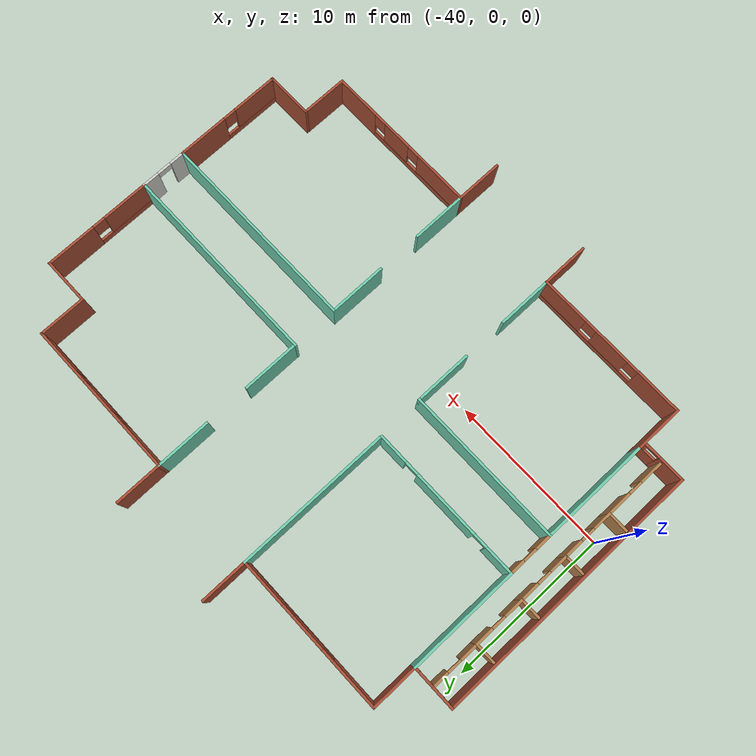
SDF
<sdf version="1.6">
 <model name="mybuilding4">
  <pose>-24.5775 3.32779 0 0 -0 0</pose>
  <link name="Wall_10">
   <collision name="Wall_10_Collision">
    <geometry><box><size>7 0.15 2.5</size></box></geometry>
    <pose>0 0 1.25 0 -0 0</pose>
   </collision>
   <visual name="Wall_10_Visual">
    <pose>0 0 1.25 0 -0 0</pose>
    <geometry><box><size>7 0.15 2.5</size></box></geometry>
    <material>
     <script><uri>file://media/materials/scripts/gazebo.material</uri><name>Gazebo/Grey</name></script>
     <ambient>0.435294 0.796078 0.67451 1</ambient>
    </material>
    <meta><layer>0</layer></meta>
   </visual>
   <pose>-13.3194 4.85 0 0 0 -1.5708</pose>
  </link>
  <link name="Wall_12">
   <pose>-8.44435 1.425 0 0 -0 0</pose>
   <visual name="Wall_12_Visual_0">
    <pose>-4.00047 0 1.25 0 -0 0</pose>
    <geometry><box><size>1.89905 0.15 2.5</size></box></geometry>
    <material>
     <script><uri>file://media/materials/scripts/gazebo.material</uri><name>Gazebo/Grey</name></script>
     <ambient>0.435294 0.796078 0.67451 1</ambient>
    </material>
    <meta><layer>0</layer></meta>
   </visual>
   <collision name="Wall_12_Collision_0">
    <geometry><box><size>1.89905 0.15 2.5</size></box></geometry>
    <pose>-4.00047 0 1.25 0 -0 0</pose>
   </collision>
   <visual name="Wall_12_Visual_1">
    <pose>-0.016774 0 1.25 0 -0 0</pose>
    <geometry><box><size>4.26834 0.15 2.5</size></box></geometry>
    <material>
     <script><uri>file://media/materials/scripts/gazebo.material</uri><name>Gazebo/Grey</name></script>
     <ambient>0.435294 0.796078 0.67451 1</ambient>
    </material>
    <meta><layer>0</layer></meta>
   </visual>
   <collision name="Wall_12_Collision_1">
    <geometry><box><size>4.26834 0.15 2.5</size></box></geometry>
    <pose>-0.016774 0 1.25 0 -0 0</pose>
   </collision>
   <visual name="Wall_12_Visual_2">
    <pose>3.9837 0 1.25 0 -0 0</pose>
    <geometry><box><size>1.9326 0.15 2.5</size></box></geometry>
    <material>
     <script><uri>file://media/materials/scripts/gazebo.material</uri><name>Gazebo/Grey</name></script>
     <ambient>0.435294 0.796078 0.67451 1</ambient>
    </material>
    <meta><layer>0</layer></meta>
   </visual>
   <collision name="Wall_12_Collision_2">
    <geometry><box><size>1.9326 0.15 2.5</size></box></geometry>
    <pose>3.9837 0 1.25 0 -0 0</pose>
   </collision>
   <visual name="Wall_12_Visual_3">
    <pose>-2.60094 0 2.25 0 -0 0</pose>
    <geometry><box><size>0.9 0.15 0.5</size></box></geometry>
    <material>
     <script><uri>file://media/materials/scripts/gazebo.material</uri><name>Gazebo/Grey</name></script>
     <ambient>0.435294 0.796078 0.67451 1</ambient>
    </material>
    <meta><layer>0</layer></meta>
   </visual>
   <collision name="Wall_12_Collision_3">
    <geometry><box><size>0.9 0.15 0.5</size></box></geometry>
    <pose>-2.60094 0 2.25 0 -0 0</pose>
   </collision>
   <visual name="Wall_12_Visual_4">
    <pose>2.5674 0 2.25 0 -0 0</pose>
    <geometry><box><size>0.9 0.15 0.5</size></box></geometry>
    <material>
     <script><uri>file://media/materials/scripts/gazebo.material</uri><name>Gazebo/Grey</name></script>
     <ambient>0.435294 0.796078 0.67451 1</ambient>
    </material>
    <meta><layer>0</layer></meta>
   </visual>
   <collision name="Wall_12_Collision_4">
    <geometry><box><size>0.9 0.15 0.5</size></box></geometry>
    <pose>2.5674 0 2.25 0 -0 0</pose>
   </collision>
  </link>
  <link name="Wall_14">
   <pose>-14.6695 6.72521 0 0 0 -1.5708</pose>
   <visual name="Wall_14_Visual_0">
    <pose>-1.05613 0 1.1 0 -0 0</pose>
    <geometry><box><size>1.13773 0.15 2.2</size></box></geometry>
    <material>
     <script><uri>file://media/materials/scripts/gazebo.material</uri><name>Gazebo/Wood</name></script>
     <ambient>1 1 1 1</ambient>
    </material>
    <meta><layer>0</layer></meta>
   </visual>
   <collision name="Wall_14_Collision_0">
    <geometry><box><size>1.13773 0.15 2.2</size></box></geometry>
    <pose>-1.05613 0 1.1 0 -0 0</pose>
   </collision>
   <visual name="Wall_14_Visual_1">
    <pose>1.01887 0 1.1 0 -0 0</pose>
    <geometry><box><size>1.21227 0.15 2.2</size></box></geometry>
    <material>
     <script><uri>file://media/materials/scripts/gazebo.material</uri><name>Gazebo/Wood</name></script>
     <ambient>1 1 1 1</ambient>
    </material>
    <meta><layer>0</layer></meta>
   </visual>
   <collision name="Wall_14_Collision_1">
    <geometry><box><size>1.21227 0.15 2.2</size></box></geometry>
    <pose>1.01887 0 1.1 0 -0 0</pose>
   </collision>
   <visual name="Wall_14_Visual_2">
    <pose>-0.037267 0 2.1 0 -0 0</pose>
    <geometry><box><size>0.9 0.15 0.2</size></box></geometry>
    <material>
     <script><uri>file://media/materials/scripts/gazebo.material</uri><name>Gazebo/Wood</name></script>
     <ambient>1 1 1 1</ambient>
    </material>
    <meta><layer>0</layer></meta>
   </visual>
   <collision name="Wall_14_Collision_2">
    <geometry><box><size>0.9 0.15 0.2</size></box></geometry>
    <pose>-0.037267 0 2.1 0 -0 0</pose>
   </collision>
  </link>
  <link name="Wall_16">
   <collision name="Wall_16_Collision">
    <geometry><box><size>1.5 0.15 2.5</size></box></geometry>
    <pose>0 0 1.25 0 -0 0</pose>
   </collision>
   <visual name="Wall_16_Visual">
    <pose>0 0 1.25 0 -0 0</pose>
    <geometry><box><size>1.5 0.15 2.5</size></box></geometry>
    <material>
     <script><uri>file://media/materials/scripts/gazebo.material</uri><name>Gazebo/Bricks</name></script>
     <ambient>1 1 1 1</ambient>
    </material>
    <meta><layer>0</layer></meta>
   </visual>
   <pose>-15.3444 8.27511 0 0 0 -3.14143</pose>
  </link>
  <link name="Wall_18">
   <collision name="Wall_18_Collision">
    <geometry><box><size>17 0.15 2.5</size></box></geometry>
    <pose>0 0 1.25 0 -0 0</pose>
   </collision>
   <visual name="Wall_18_Visual">
    <pose>0 0 1.25 0 -0 0</pose>
    <geometry><box><size>17 0.15 2.5</size></box></geometry>
    <material>
     <script><uri>file://media/materials/scripts/gazebo.material</uri><name>Gazebo/Bricks</name></script>
     <ambient>1 1 1 1</ambient>
    </material>
    <meta><layer>0</layer></meta>
   </visual>
   <pose>-16.0193 -0.15 0 0 0 -1.5708</pose>
  </link>
  <link name="Wall_2">
   <pose>-8.42511 11.125 0 0 -0 0</pose>
   <visual name="Wall_2_Visual_0">
    <pose>-3.41019 0 1.25 0 -0 0</pose>
    <geometry><box><size>3.11808 0.15 2.5</size></box></geometry>
    <material>
     <script><uri>file://media/materials/scripts/gazebo.material</uri><name>Gazebo/Bricks</name></script>
     <ambient>1 1 1 1</ambient>
    </material>
    <meta><layer>0</layer></meta>
   </visual>
   <collision name="Wall_2_Collision_0">
    <geometry><box><size>3.11808 0.15 2.5</size></box></geometry>
    <pose>-3.41019 0 1.25 0 -0 0</pose>
   </collision>
   <visual name="Wall_2_Visual_1">
    <pose>1.55904 0 0.25 0 -0 0</pose>
    <geometry><box><size>6.82039 0.15 0.5</size></box></geometry>
    <material>
     <script><uri>file://media/materials/scripts/gazebo.material</uri><name>Gazebo/Bricks</name></script>
     <ambient>1 1 1 1</ambient>
    </material>
    <meta><layer>0</layer></meta>
   </visual>
   <collision name="Wall_2_Collision_1">
    <geometry><box><size>6.82039 0.15 0.5</size></box></geometry>
    <pose>1.55904 0 0.25 0 -0 0</pose>
   </collision>
   <visual name="Wall_2_Visual_2">
    <pose>0.056279 0 1.5 0 -0 0</pose>
    <geometry><box><size>2.21486 0.15 2</size></box></geometry>
    <material>
     <script><uri>file://media/materials/scripts/gazebo.material</uri><name>Gazebo/Bricks</name></script>
     <ambient>1 1 1 1</ambient>
    </material>
    <meta><layer>0</layer></meta>
   </visual>
   <collision name="Wall_2_Collision_2">
    <geometry><box><size>2.21486 0.15 2</size></box></geometry>
    <pose>0.056279 0 1.5 0 -0 0</pose>
   </collision>
   <visual name="Wall_2_Visual_3">
    <pose>3.46647 0 1.5 0 -0 0</pose>
    <geometry><box><size>3.00553 0.15 2</size></box></geometry>
    <material>
     <script><uri>file://media/materials/scripts/gazebo.material</uri><name>Gazebo/Bricks</name></script>
     <ambient>1 1 1 1</ambient>
    </material>
    <meta><layer>0</layer></meta>
   </visual>
   <collision name="Wall_2_Collision_3">
    <geometry><box><size>3.00553 0.15 2</size></box></geometry>
    <pose>3.46647 0 1.5 0 -0 0</pose>
   </collision>
   <visual name="Wall_2_Visual_4">
    <pose>-1.45115 0 1.9 0 -0 0</pose>
    <geometry><box><size>0.8 0.15 1.2</size></box></geometry>
    <material>
     <script><uri>file://media/materials/scripts/gazebo.material</uri><name>Gazebo/Bricks</name></script>
     <ambient>1 1 1 1</ambient>
    </material>
    <meta><layer>0</layer></meta>
   </visual>
   <collision name="Wall_2_Collision_4">
    <geometry><box><size>0.8 0.15 1.2</size></box></geometry>
    <pose>-1.45115 0 1.9 0 -0 0</pose>
   </collision>
   <visual name="Wall_2_Visual_5">
    <pose>1.56371 0 1.9 0 -0 0</pose>
    <geometry><box><size>0.8 0.15 1.2</size></box></geometry>
    <material>
     <script><uri>file://media/materials/scripts/gazebo.material</uri><name>Gazebo/Bricks</name></script>
     <ambient>1 1 1 1</ambient>
    </material>
    <meta><layer>0</layer></meta>
   </visual>
   <collision name="Wall_2_Collision_5">
    <geometry><box><size>0.8 0.15 1.2</size></box></geometry>
    <pose>1.56371 0 1.9 0 -0 0</pose>
   </collision>
  </link>
  <link name="Wall_20">
   <pose>-13.3194 0 0 0 0 -1.5708</pose>
   <visual name="Wall_20_Visual_0">
    <pose>-0.991559 0 1.25 0 -0 0</pose>
    <geometry><box><size>1.01688 0.15 2.5</size></box></geometry>
    <material>
     <script><uri>file://media/materials/scripts/gazebo.material</uri><name>Gazebo/Wood</name></script>
     <ambient>1 1 1 1</ambient>
    </material>
    <meta><layer>0</layer></meta>
   </visual>
   <collision name="Wall_20_Collision_0">
    <geometry><box><size>1.01688 0.15 2.5</size></box></geometry>
    <pose>-0.991559 0 1.25 0 -0 0</pose>
   </collision>
   <visual name="Wall_20_Visual_1">
    <pose>0.958441 0 1.25 0 -0 0</pose>
    <geometry><box><size>1.08312 0.15 2.5</size></box></geometry>
    <material>
     <script><uri>file://media/materials/scripts/gazebo.material</uri><name>Gazebo/Wood</name></script>
     <ambient>1 1 1 1</ambient>
    </material>
    <meta><layer>0</layer></meta>
   </visual>
   <collision name="Wall_20_Collision_1">
    <geometry><box><size>1.08312 0.15 2.5</size></box></geometry>
    <pose>0.958441 0 1.25 0 -0 0</pose>
   </collision>
   <visual name="Wall_20_Visual_2">
    <pose>-0.033118 0 2.25 0 -0 0</pose>
    <geometry><box><size>0.9 0.15 0.5</size></box></geometry>
    <material>
     <script><uri>file://media/materials/scripts/gazebo.material</uri><name>Gazebo/Wood</name></script>
     <ambient>1 1 1 1</ambient>
    </material>
    <meta><layer>0</layer></meta>
   </visual>
   <collision name="Wall_20_Collision_2">
    <geometry><box><size>0.9 0.15 0.5</size></box></geometry>
    <pose>-0.033118 0 2.25 0 -0 0</pose>
   </collision>
  </link>
  <link name="Wall_22">
   <collision name="Wall_22_Collision">
    <geometry><box><size>7 0.15 2.5</size></box></geometry>
    <pose>0 0 1.25 0 -0 0</pose>
   </collision>
   <visual name="Wall_22_Visual">
    <pose>0 0 1.25 0 -0 0</pose>
    <geometry><box><size>7 0.15 2.5</size></box></geometry>
    <material>
     <script><uri>file://media/materials/scripts/gazebo.material</uri><name>Gazebo/Grey</name></script>
     <ambient>0.435294 0.796078 0.67451 1</ambient>
    </material>
    <meta><layer>0</layer></meta>
   </visual>
   <pose>-13.3194 -4.85 0 0 0 -1.5708</pose>
  </link>
  <link name="Wall_24">
   <collision name="Wall_24_Collision">
    <geometry><box><size>3 0.15 2.5</size></box></geometry>
    <pose>0 0 1.25 0 -0 0</pose>
   </collision>
   <visual name="Wall_24_Visual">
    <pose>0 0 1.25 0 -0 0</pose>
    <geometry><box><size>3 0.15 2.5</size></box></geometry>
    <material>
     <script><uri>file://media/materials/scripts/gazebo.material</uri><name>Gazebo/Bricks</name></script>
     <ambient>1 1 1 1</ambient>
    </material>
    <meta><layer>0</layer></meta>
   </visual>
   <pose>-13.3194 -9.7 0 0 0 -1.5708</pose>
  </link>
  <link name="Wall_26">
   <collision name="Wall_26_Collision">
    <geometry><box><size>10 0.15 2.5</size></box></geometry>
    <pose>0 0 1.25 0 -0 0</pose>
   </collision>
   <visual name="Wall_26_Visual">
    <pose>0 0 1.25 0 -0 0</pose>
    <geometry><box><size>10 0.15 2.5</size></box></geometry>
    <material>
     <script><uri>file://media/materials/scripts/gazebo.material</uri><name>Gazebo/Grey</name></script>
     <ambient>0.435294 0.796078 0.67451 1</ambient>
    </material>
    <meta><layer>0</layer></meta>
   </visual>
   <pose>-8.39435 -1.425 0 0 -0 0</pose>
  </link>
  <link name="Wall_28">
   <pose>-8.39435 -11.125 0 0 -0 0</pose>
   <visual name="Wall_28_Visual_0">
    <pose>-3.53325 0 1.25 0 -0 0</pose>
    <geometry><box><size>2.9335 0.15 2.5</size></box></geometry>
    <material>
     <script><uri>file://media/materials/scripts/gazebo.material</uri><name>Gazebo/Bricks</name></script>
     <ambient>1 1 1 1</ambient>
    </material>
    <meta><layer>0</layer></meta>
   </visual>
   <collision name="Wall_28_Collision_0">
    <geometry><box><size>2.9335 0.15 2.5</size></box></geometry>
    <pose>-3.53325 0 1.25 0 -0 0</pose>
   </collision>
   <visual name="Wall_28_Visual_1">
    <pose>1.46675 0 0.25 0 -0 0</pose>
    <geometry><box><size>7.0665 0.15 0.5</size></box></geometry>
    <material>
     <script><uri>file://media/materials/scripts/gazebo.material</uri><name>Gazebo/Bricks</name></script>
     <ambient>1 1 1 1</ambient>
    </material>
    <meta><layer>0</layer></meta>
   </visual>
   <collision name="Wall_28_Collision_1">
    <geometry><box><size>7.0665 0.15 0.5</size></box></geometry>
    <pose>1.46675 0 0.25 0 -0 0</pose>
   </collision>
   <visual name="Wall_28_Visual_2">
    <pose>-0.097543 0 1.5 0 -0 0</pose>
    <geometry><box><size>2.33792 0.15 2</size></box></geometry>
    <material>
     <script><uri>file://media/materials/scripts/gazebo.material</uri><name>Gazebo/Bricks</name></script>
     <ambient>1 1 1 1</ambient>
    </material>
    <meta><layer>0</layer></meta>
   </visual>
   <collision name="Wall_28_Collision_2">
    <geometry><box><size>2.33792 0.15 2</size></box></geometry>
    <pose>-0.097543 0 1.5 0 -0 0</pose>
   </collision>
   <visual name="Wall_28_Visual_3">
    <pose>3.43571 0 1.5 0 -0 0</pose>
    <geometry><box><size>3.12858 0.15 2</size></box></geometry>
    <material>
     <script><uri>file://media/materials/scripts/gazebo.material</uri><name>Gazebo/Bricks</name></script>
     <ambient>1 1 1 1</ambient>
    </material>
    <meta><layer>0</layer></meta>
   </visual>
   <collision name="Wall_28_Collision_3">
    <geometry><box><size>3.12858 0.15 2</size></box></geometry>
    <pose>3.43571 0 1.5 0 -0 0</pose>
   </collision>
   <visual name="Wall_28_Visual_4">
    <pose>-1.6665 0 1.9 0 -0 0</pose>
    <geometry><box><size>0.8 0.15 1.2</size></box></geometry>
    <material>
     <script><uri>file://media/materials/scripts/gazebo.material</uri><name>Gazebo/Bricks</name></script>
     <ambient>1 1 1 1</ambient>
    </material>
    <meta><layer>0</layer></meta>
   </visual>
   <collision name="Wall_28_Collision_4">
    <geometry><box><size>0.8 0.15 1.2</size></box></geometry>
    <pose>-1.6665 0 1.9 0 -0 0</pose>
   </collision>
   <visual name="Wall_28_Visual_5">
    <pose>1.47142 0 1.9 0 -0 0</pose>
    <geometry><box><size>0.8 0.15 1.2</size></box></geometry>
    <material>
     <script><uri>file://media/materials/scripts/gazebo.material</uri><name>Gazebo/Bricks</name></script>
     <ambient>1 1 1 1</ambient>
    </material>
    <meta><layer>0</layer></meta>
   </visual>
   <collision name="Wall_28_Collision_5">
    <geometry><box><size>0.8 0.15 1.2</size></box></geometry>
    <pose>1.47142 0 1.9 0 -0 0</pose>
   </collision>
  </link>
  <link name="Wall_30">
   <collision name="Wall_30_Collision">
    <geometry><box><size>3.5 0.15 2.5</size></box></geometry>
    <pose>0 0 1.25 0 -0 0</pose>
   </collision>
   <visual name="Wall_30_Visual">
    <pose>0 0 1.25 0 -0 0</pose>
    <geometry><box><size>3.5 0.15 2.5</size></box></geometry>
    <material>
     <script><uri>file://media/materials/scripts/gazebo.material</uri><name>Gazebo/Grey</name></script>
     <ambient>0.435294 0.796078 0.67451 1</ambient>
    </material>
    <meta><layer>0</layer></meta>
   </visual>
   <pose>-3.46935 -9.45 0 0 -0 1.5708</pose>
  </link>
  <link name="Wall_32">
   <collision name="Wall_32_Collision">
    <geometry><box><size>1.5 0.15 2.2</size></box></geometry>
    <pose>0 0 1.1 0 -0 0</pose>
   </collision>
   <visual name="Wall_32_Visual">
    <pose>0 0 1.1 0 -0 0</pose>
    <geometry><box><size>1.5 0.15 2.2</size></box></geometry>
    <material>
     <script><uri>file://media/materials/scripts/gazebo.material</uri><name>Gazebo/Wood</name></script>
     <ambient>1 1 1 1</ambient>
    </material>
    <meta><layer>0</layer></meta>
   </visual>
   <pose>-15.3445 5.17521 0 0 -0 3.14159</pose>
  </link>
  <link name="Wall_34">
   <pose>-14.6695 3.55021 0 0 0 -1.5708</pose>
   <visual name="Wall_34_Visual_0">
    <pose>-1.09385 0 1.1 0 -0 0</pose>
    <geometry><box><size>1.2123 0.15 2.2</size></box></geometry>
    <material>
     <script><uri>file://media/materials/scripts/gazebo.material</uri><name>Gazebo/Wood</name></script>
     <ambient>1 1 1 1</ambient>
    </material>
    <meta><layer>0</layer></meta>
   </visual>
   <collision name="Wall_34_Collision_0">
    <geometry><box><size>1.2123 0.15 2.2</size></box></geometry>
    <pose>-1.09385 0 1.1 0 -0 0</pose>
   </collision>
   <visual name="Wall_34_Visual_1">
    <pose>1.05615 0 1.1 0 -0 0</pose>
    <geometry><box><size>1.2877 0.15 2.2</size></box></geometry>
    <material>
     <script><uri>file://media/materials/scripts/gazebo.material</uri><name>Gazebo/Wood</name></script>
     <ambient>1 1 1 1</ambient>
    </material>
    <meta><layer>0</layer></meta>
   </visual>
   <collision name="Wall_34_Collision_1">
    <geometry><box><size>1.2877 0.15 2.2</size></box></geometry>
    <pose>1.05615 0 1.1 0 -0 0</pose>
   </collision>
   <visual name="Wall_34_Visual_2">
    <pose>-0.037695 0 2.1 0 -0 0</pose>
    <geometry><box><size>0.9 0.15 0.2</size></box></geometry>
    <material>
     <script><uri>file://media/materials/scripts/gazebo.material</uri><name>Gazebo/Wood</name></script>
     <ambient>1 1 1 1</ambient>
    </material>
    <meta><layer>0</layer></meta>
   </visual>
   <collision name="Wall_34_Collision_2">
    <geometry><box><size>0.9 0.15 0.2</size></box></geometry>
    <pose>-0.037695 0 2.1 0 -0 0</pose>
   </collision>
  </link>
  <link name="Wall_36">
   <collision name="Wall_36_Collision">
    <geometry><box><size>1.5 0.15 2.2</size></box></geometry>
    <pose>0 0 1.1 0 -0 0</pose>
   </collision>
   <visual name="Wall_36_Visual">
    <pose>0 0 1.1 0 -0 0</pose>
    <geometry><box><size>1.5 0.15 2.2</size></box></geometry>
    <material>
     <script><uri>file://media/materials/scripts/gazebo.material</uri><name>Gazebo/Wood</name></script>
     <ambient>1 1 1 1</ambient>
    </material>
    <meta><layer>0</layer></meta>
   </visual>
   <pose>-15.3445 1.92521 0 0 -0 3.14159</pose>
  </link>
  <link name="Wall_38">
   <pose>-14.6695 0.300213 0 0 0 -1.5708</pose>
   <visual name="Wall_38_Visual_0">
    <pose>-1.05792 0 1.1 0 -0 0</pose>
    <geometry><box><size>1.28416 0.15 2.2</size></box></geometry>
    <material>
     <script><uri>file://media/materials/scripts/gazebo.material</uri><name>Gazebo/Wood</name></script>
     <ambient>1 1 1 1</ambient>
    </material>
    <meta><layer>0</layer></meta>
   </visual>
   <collision name="Wall_38_Collision_0">
    <geometry><box><size>1.28416 0.15 2.2</size></box></geometry>
    <pose>-1.05792 0 1.1 0 -0 0</pose>
   </collision>
   <visual name="Wall_38_Visual_1">
    <pose>1.09208 0 1.1 0 -0 0</pose>
    <geometry><box><size>1.21584 0.15 2.2</size></box></geometry>
    <material>
     <script><uri>file://media/materials/scripts/gazebo.material</uri><name>Gazebo/Wood</name></script>
     <ambient>1 1 1 1</ambient>
    </material>
    <meta><layer>0</layer></meta>
   </visual>
   <collision name="Wall_38_Collision_1">
    <geometry><box><size>1.21584 0.15 2.2</size></box></geometry>
    <pose>1.09208 0 1.1 0 -0 0</pose>
   </collision>
   <visual name="Wall_38_Visual_2">
    <pose>0.03416 0 2.1 0 -0 0</pose>
    <geometry><box><size>0.9 0.15 0.2</size></box></geometry>
    <material>
     <script><uri>file://media/materials/scripts/gazebo.material</uri><name>Gazebo/Wood</name></script>
     <ambient>1 1 1 1</ambient>
    </material>
    <meta><layer>0</layer></meta>
   </visual>
   <collision name="Wall_38_Collision_2">
    <geometry><box><size>0.9 0.15 0.2</size></box></geometry>
    <pose>0.03416 0 2.1 0 -0 0</pose>
   </collision>
  </link>
  <link name="Wall_4">
   <collision name="Wall_4_Collision">
    <geometry><box><size>3 0.15 2.5</size></box></geometry>
    <pose>0 0 1.25 0 -0 0</pose>
   </collision>
   <visual name="Wall_4_Visual">
    <pose>0 0 1.25 0 -0 0</pose>
    <geometry><box><size>3 0.15 2.5</size></box></geometry>
    <material>
     <script><uri>file://media/materials/scripts/gazebo.material</uri><name>Gazebo/Bricks</name></script>
     <ambient>1 1 1 1</ambient>
    </material>
    <meta><layer>0</layer></meta>
   </visual>
   <pose>-13.3194 9.7 0 0 0 -1.5708</pose>
  </link>
  <link name="Wall_40">
   <collision name="Wall_40_Collision">
    <geometry><box><size>1.5 0.15 2.2</size></box></geometry>
    <pose>0 0 1.1 0 -0 0</pose>
   </collision>
   <visual name="Wall_40_Visual">
    <pose>0 0 1.1 0 -0 0</pose>
    <geometry><box><size>1.5 0.15 2.2</size></box></geometry>
    <material>
     <script><uri>file://media/materials/scripts/gazebo.material</uri><name>Gazebo/Wood</name></script>
     <ambient>1 1 1 1</ambient>
    </material>
    <meta><layer>0</layer></meta>
   </visual>
   <pose>-15.3445 -1.32479 0 0 -0 3.14159</pose>
  </link>
  <link name="Wall_42">
   <pose>-14.6695 -2.94979 0 0 0 -1.5708</pose>
   <visual name="Wall_42_Visual_0">
    <pose>-1.06166 0 1.1 0 -0 0</pose>
    <geometry><box><size>1.27668 0.15 2.2</size></box></geometry>
    <material>
     <script><uri>file://media/materials/scripts/gazebo.material</uri><name>Gazebo/Wood</name></script>
     <ambient>1 1 1 1</ambient>
    </material>
    <meta><layer>0</layer></meta>
   </visual>
   <collision name="Wall_42_Collision_0">
    <geometry><box><size>1.27668 0.15 2.2</size></box></geometry>
    <pose>-1.06166 0 1.1 0 -0 0</pose>
   </collision>
   <visual name="Wall_42_Visual_1">
    <pose>1.08834 0 1.1 0 -0 0</pose>
    <geometry><box><size>1.22332 0.15 2.2</size></box></geometry>
    <material>
     <script><uri>file://media/materials/scripts/gazebo.material</uri><name>Gazebo/Wood</name></script>
     <ambient>1 1 1 1</ambient>
    </material>
    <meta><layer>0</layer></meta>
   </visual>
   <collision name="Wall_42_Collision_1">
    <geometry><box><size>1.22332 0.15 2.2</size></box></geometry>
    <pose>1.08834 0 1.1 0 -0 0</pose>
   </collision>
   <visual name="Wall_42_Visual_2">
    <pose>0.026677 0 2.1 0 -0 0</pose>
    <geometry><box><size>0.9 0.15 0.2</size></box></geometry>
    <material>
     <script><uri>file://media/materials/scripts/gazebo.material</uri><name>Gazebo/Wood</name></script>
     <ambient>1 1 1 1</ambient>
    </material>
    <meta><layer>0</layer></meta>
   </visual>
   <collision name="Wall_42_Collision_2">
    <geometry><box><size>0.9 0.15 0.2</size></box></geometry>
    <pose>0.026677 0 2.1 0 -0 0</pose>
   </collision>
  </link>
  <link name="Wall_44">
   <collision name="Wall_44_Collision">
    <geometry><box><size>1.5 0.15 2.2</size></box></geometry>
    <pose>0 0 1.1 0 -0 0</pose>
   </collision>
   <visual name="Wall_44_Visual">
    <pose>0 0 1.1 0 -0 0</pose>
    <geometry><box><size>1.5 0.15 2.2</size></box></geometry>
    <material>
     <script><uri>file://media/materials/scripts/gazebo.material</uri><name>Gazebo/Wood</name></script>
     <ambient>1 1 1 1</ambient>
    </material>
    <meta><layer>0</layer></meta>
   </visual>
   <pose>-15.3445 -4.57479 0 0 -0 3.14159</pose>
  </link>
  <link name="Wall_46">
   <pose>-14.7194 -8.575 0 0 -0 0</pose>
   <visual name="Wall_46_Visual_0">
    <pose>-0.527143 0 1.25 0 -0 0</pose>
    <geometry><box><size>1.69572 0.15 2.5</size></box></geometry>
    <material>
     <script><uri>file://media/materials/scripts/gazebo.material</uri><name>Gazebo/Bricks</name></script>
     <ambient>1 1 1 1</ambient>
    </material>
    <meta><layer>0</layer></meta>
   </visual>
   <collision name="Wall_46_Collision_0">
    <geometry><box><size>1.69572 0.15 2.5</size></box></geometry>
    <pose>-0.527143 0 1.25 0 -0 0</pose>
   </collision>
   <visual name="Wall_46_Visual_1">
    <pose>0.847857 0 0.75 0 -0 0</pose>
    <geometry><box><size>1.05428 0.15 1.5</size></box></geometry>
    <material>
     <script><uri>file://media/materials/scripts/gazebo.material</uri><name>Gazebo/Bricks</name></script>
     <ambient>1 1 1 1</ambient>
    </material>
    <meta><layer>0</layer></meta>
   </visual>
   <collision name="Wall_46_Collision_1">
    <geometry><box><size>1.05428 0.15 1.5</size></box></geometry>
    <pose>0.847857 0 0.75 0 -0 0</pose>
   </collision>
   <visual name="Wall_46_Visual_2">
    <pose>1.24786 0 2 0 -0 0</pose>
    <geometry><box><size>0.254285 0.15 1</size></box></geometry>
    <material>
     <script><uri>file://media/materials/scripts/gazebo.material</uri><name>Gazebo/Bricks</name></script>
     <ambient>1 1 1 1</ambient>
    </material>
    <meta><layer>0</layer></meta>
   </visual>
   <collision name="Wall_46_Collision_2">
    <geometry><box><size>0.254285 0.15 1</size></box></geometry>
    <pose>1.24786 0 2 0 -0 0</pose>
   </collision>
   <visual name="Wall_46_Visual_3">
    <pose>0.720715 0 2.4 0 -0 0</pose>
    <geometry><box><size>0.8 0.15 0.2</size></box></geometry>
    <material>
     <script><uri>file://media/materials/scripts/gazebo.material</uri><name>Gazebo/Bricks</name></script>
     <ambient>1 1 1 1</ambient>
    </material>
    <meta><layer>0</layer></meta>
   </visual>
   <collision name="Wall_46_Collision_3">
    <geometry><box><size>0.8 0.15 0.2</size></box></geometry>
    <pose>0.720715 0 2.4 0 -0 0</pose>
   </collision>
  </link>
  <link name="Wall_48">
   <pose>-14.6695 -6.49979 0 0 0 -1.5708</pose>
   <visual name="Wall_48_Visual_0">
    <pose>-1.19312 0 1.1 0 -0 0</pose>
    <geometry><box><size>1.61376 0.15 2.2</size></box></geometry>
    <material>
     <script><uri>file://media/materials/scripts/gazebo.material</uri><name>Gazebo/Wood</name></script>
     <ambient>1 1 1 1</ambient>
    </material>
    <meta><layer>0</layer></meta>
   </visual>
   <collision name="Wall_48_Collision_0">
    <geometry><box><size>1.61376 0.15 2.2</size></box></geometry>
    <pose>-1.19312 0 1.1 0 -0 0</pose>
   </collision>
   <visual name="Wall_48_Visual_1">
    <pose>1.25688 0 1.1 0 -0 0</pose>
    <geometry><box><size>1.48625 0.15 2.2</size></box></geometry>
    <material>
     <script><uri>file://media/materials/scripts/gazebo.material</uri><name>Gazebo/Wood</name></script>
     <ambient>1 1 1 1</ambient>
    </material>
    <meta><layer>0</layer></meta>
   </visual>
   <collision name="Wall_48_Collision_1">
    <geometry><box><size>1.48625 0.15 2.2</size></box></geometry>
    <pose>1.25688 0 1.1 0 -0 0</pose>
   </collision>
   <visual name="Wall_48_Visual_2">
    <pose>0.063755 0 2.1 0 -0 0</pose>
    <geometry><box><size>0.9 0.15 0.2</size></box></geometry>
    <material>
     <script><uri>file://media/materials/scripts/gazebo.material</uri><name>Gazebo/Wood</name></script>
     <ambient>1 1 1 1</ambient>
    </material>
    <meta><layer>0</layer></meta>
   </visual>
   <collision name="Wall_48_Collision_2">
    <geometry><box><size>0.9 0.15 0.2</size></box></geometry>
    <pose>0.063755 0 2.1 0 -0 0</pose>
   </collision>
  </link>
  <link name="Wall_50">
   <collision name="Wall_50_Collision">
    <geometry><box><size>3 0.15 2.5</size></box></geometry>
    <pose>0 0 1.25 0 -0 0</pose>
   </collision>
   <visual name="Wall_50_Visual">
    <pose>0 0 1.25 0 -0 0</pose>
    <geometry><box><size>3 0.15 2.5</size></box></geometry>
    <material>
     <script><uri>file://media/materials/scripts/gazebo.material</uri><name>Gazebo/Bricks</name></script>
     <ambient>1 1 1 1</ambient>
    </material>
    <meta><layer>0</layer></meta>
   </visual>
   <pose>-3.53088 12.55 0 0 -0 1.5708</pose>
  </link>
  <link name="Wall_54">
   <collision name="Wall_54_Collision">
    <geometry><box><size>3 0.15 2.5</size></box></geometry>
    <pose>0 0 1.25 0 -0 0</pose>
   </collision>
   <visual name="Wall_54_Visual">
    <pose>0 0 1.25 0 -0 0</pose>
    <geometry><box><size>3 0.15 2.5</size></box></geometry>
    <material>
     <script><uri>file://media/materials/scripts/gazebo.material</uri><name>Gazebo/Bricks</name></script>
     <ambient>1 1 1 1</ambient>
    </material>
    <meta><layer>0</layer></meta>
   </visual>
   <pose>3.31912 12.55 0 0 -0 1.5708</pose>
  </link>
  <link name="Wall_56">
   <pose>8.24412 11.125 0 0 -0 0</pose>
   <visual name="Wall_56_Visual_0">
    <pose>-3.36164 0 1.25 0 -0 0</pose>
    <geometry><box><size>3.27672 0.15 2.5</size></box></geometry>
    <material>
     <script><uri>file://media/materials/scripts/gazebo.material</uri><name>Gazebo/Bricks</name></script>
     <ambient>1 1 1 1</ambient>
    </material>
    <meta><layer>0</layer></meta>
   </visual>
   <collision name="Wall_56_Collision_0">
    <geometry><box><size>3.27672 0.15 2.5</size></box></geometry>
    <pose>-3.36164 0 1.25 0 -0 0</pose>
   </collision>
   <visual name="Wall_56_Visual_1">
    <pose>1.63836 0 0.25 0 -0 0</pose>
    <geometry><box><size>6.72328 0.15 0.5</size></box></geometry>
    <material>
     <script><uri>file://media/materials/scripts/gazebo.material</uri><name>Gazebo/Bricks</name></script>
     <ambient>1 1 1 1</ambient>
    </material>
    <meta><layer>0</layer></meta>
   </visual>
   <collision name="Wall_56_Collision_1">
    <geometry><box><size>6.72328 0.15 0.5</size></box></geometry>
    <pose>1.63836 0 0.25 0 -0 0</pose>
   </collision>
   <visual name="Wall_56_Visual_2">
    <pose>0.184154 0 1.5 0 -0 0</pose>
    <geometry><box><size>2.21487 0.15 2</size></box></geometry>
    <material>
     <script><uri>file://media/materials/scripts/gazebo.material</uri><name>Gazebo/Bricks</name></script>
     <ambient>1 1 1 1</ambient>
    </material>
    <meta><layer>0</layer></meta>
   </visual>
   <collision name="Wall_56_Collision_2">
    <geometry><box><size>2.21487 0.15 2</size></box></geometry>
    <pose>0.184154 0 1.5 0 -0 0</pose>
   </collision>
   <visual name="Wall_56_Visual_3">
    <pose>3.54579 0 1.5 0 -0 0</pose>
    <geometry><box><size>2.90841 0.15 2</size></box></geometry>
    <material>
     <script><uri>file://media/materials/scripts/gazebo.material</uri><name>Gazebo/Bricks</name></script>
     <ambient>1 1 1 1</ambient>
    </material>
    <meta><layer>0</layer></meta>
   </visual>
   <collision name="Wall_56_Collision_3">
    <geometry><box><size>2.90841 0.15 2</size></box></geometry>
    <pose>3.54579 0 1.5 0 -0 0</pose>
   </collision>
   <visual name="Wall_56_Visual_4">
    <pose>-1.32328 0 1.9 0 -0 0</pose>
    <geometry><box><size>0.8 0.15 1.2</size></box></geometry>
    <material>
     <script><uri>file://media/materials/scripts/gazebo.material</uri><name>Gazebo/Bricks</name></script>
     <ambient>1 1 1 1</ambient>
    </material>
    <meta><layer>0</layer></meta>
   </visual>
   <collision name="Wall_56_Collision_4">
    <geometry><box><size>0.8 0.15 1.2</size></box></geometry>
    <pose>-1.32328 0 1.9 0 -0 0</pose>
   </collision>
   <visual name="Wall_56_Visual_5">
    <pose>1.69159 0 1.9 0 -0 0</pose>
    <geometry><box><size>0.8 0.15 1.2</size></box></geometry>
    <material>
     <script><uri>file://media/materials/scripts/gazebo.material</uri><name>Gazebo/Bricks</name></script>
     <ambient>1 1 1 1</ambient>
    </material>
    <meta><layer>0</layer></meta>
   </visual>
   <collision name="Wall_56_Collision_5">
    <geometry><box><size>0.8 0.15 1.2</size></box></geometry>
    <pose>1.69159 0 1.9 0 -0 0</pose>
   </collision>
  </link>
  <link name="Wall_58">
   <collision name="Wall_58_Collision">
    <geometry><box><size>3 0.15 2.5</size></box></geometry>
    <pose>0 0 1.25 0 -0 0</pose>
   </collision>
   <visual name="Wall_58_Visual">
    <pose>0 0 1.25 0 -0 0</pose>
    <geometry><box><size>3 0.15 2.5</size></box></geometry>
    <material>
     <script><uri>file://media/materials/scripts/gazebo.material</uri><name>Gazebo/Bricks</name></script>
     <ambient>1 1 1 1</ambient>
    </material>
    <meta><layer>0</layer></meta>
   </visual>
   <pose>13.1691 9.7 0 0 0 -1.5708</pose>
  </link>
  <link name="Wall_6">
   <pose>-13.9944 8.27511 0 0 -0 3.14143</pose>
   <visual name="Wall_6_Visual_0">
    <pose>-0.569122 0 1.25 0 -0 0</pose>
    <geometry><box><size>0.361757 0.15 2.5</size></box></geometry>
    <material>
     <script><uri>file://media/materials/scripts/gazebo.material</uri><name>Gazebo/Bricks</name></script>
     <ambient>1 1 1 1</ambient>
    </material>
    <meta><layer>0</layer></meta>
   </visual>
   <collision name="Wall_6_Collision_0">
    <geometry><box><size>0.361757 0.15 2.5</size></box></geometry>
    <pose>-0.569122 0 1.25 0 -0 0</pose>
   </collision>
   <visual name="Wall_6_Visual_1">
    <pose>0.180878 0 0.75 0 -0 0</pose>
    <geometry><box><size>1.13824 0.15 1.5</size></box></geometry>
    <material>
     <script><uri>file://media/materials/scripts/gazebo.material</uri><name>Gazebo/Bricks</name></script>
     <ambient>1 1 1 1</ambient>
    </material>
    <meta><layer>0</layer></meta>
   </visual>
   <collision name="Wall_6_Collision_1">
    <geometry><box><size>1.13824 0.15 1.5</size></box></geometry>
    <pose>0.180878 0 0.75 0 -0 0</pose>
   </collision>
   <visual name="Wall_6_Visual_2">
    <pose>0.580878 0 2 0 -0 0</pose>
    <geometry><box><size>0.338243 0.15 1</size></box></geometry>
    <material>
     <script><uri>file://media/materials/scripts/gazebo.material</uri><name>Gazebo/Bricks</name></script>
     <ambient>1 1 1 1</ambient>
    </material>
    <meta><layer>0</layer></meta>
   </visual>
   <collision name="Wall_6_Collision_2">
    <geometry><box><size>0.338243 0.15 1</size></box></geometry>
    <pose>0.580878 0 2 0 -0 0</pose>
   </collision>
   <visual name="Wall_6_Visual_3">
    <pose>0.011757 0 2.4 0 -0 0</pose>
    <geometry><box><size>0.8 0.15 0.2</size></box></geometry>
    <material>
     <script><uri>file://media/materials/scripts/gazebo.material</uri><name>Gazebo/Bricks</name></script>
     <ambient>1 1 1 1</ambient>
    </material>
    <meta><layer>0</layer></meta>
   </visual>
   <collision name="Wall_6_Collision_3">
    <geometry><box><size>0.8 0.15 0.2</size></box></geometry>
    <pose>0.011757 0 2.4 0 -0 0</pose>
   </collision>
  </link>
  <link name="Wall_60">
   <collision name="Wall_60_Collision">
    <geometry><box><size>3 0.15 2.5</size></box></geometry>
    <pose>0 0 1.25 0 -0 0</pose>
   </collision>
   <visual name="Wall_60_Visual">
    <pose>0 0 1.25 0 -0 0</pose>
    <geometry><box><size>3 0.15 2.5</size></box></geometry>
    <material>
     <script><uri>file://media/materials/scripts/gazebo.material</uri><name>Gazebo/Bricks</name></script>
     <ambient>1 1 1 1</ambient>
    </material>
    <meta><layer>0</layer></meta>
   </visual>
   <pose>14.5941 8.275 0 0 -0 0</pose>
  </link>
  <link name="Wall_62">
   <pose>16.0193 4.85011 0 0 0 -1.57075</pose>
   <visual name="Wall_62_Visual_0">
    <pose>-1.90363 0 1.25 0 -0 0</pose>
    <geometry><box><size>3.19273 0.15 2.5</size></box></geometry>
    <material>
     <script><uri>file://media/materials/scripts/gazebo.material</uri><name>Gazebo/Bricks</name></script>
     <ambient>1 1 1 1</ambient>
    </material>
    <meta><layer>0</layer></meta>
   </visual>
   <collision name="Wall_62_Collision_0">
    <geometry><box><size>3.19273 0.15 2.5</size></box></geometry>
    <pose>-1.90363 0 1.25 0 -0 0</pose>
   </collision>
   <visual name="Wall_62_Visual_1">
    <pose>1.59637 0 0.25 0 -0 0</pose>
    <geometry><box><size>3.80727 0.15 0.5</size></box></geometry>
    <material>
     <script><uri>file://media/materials/scripts/gazebo.material</uri><name>Gazebo/Bricks</name></script>
     <ambient>1 1 1 1</ambient>
    </material>
    <meta><layer>0</layer></meta>
   </visual>
   <collision name="Wall_62_Collision_1">
    <geometry><box><size>3.80727 0.15 0.5</size></box></geometry>
    <pose>1.59637 0 0.25 0 -0 0</pose>
   </collision>
   <visual name="Wall_62_Visual_2">
    <pose>1.99637 0 1.5 0 -0 0</pose>
    <geometry><box><size>3.00727 0.15 2</size></box></geometry>
    <material>
     <script><uri>file://media/materials/scripts/gazebo.material</uri><name>Gazebo/Bricks</name></script>
     <ambient>1 1 1 1</ambient>
    </material>
    <meta><layer>0</layer></meta>
   </visual>
   <collision name="Wall_62_Collision_2">
    <geometry><box><size>3.00727 0.15 2</size></box></geometry>
    <pose>1.99637 0 1.5 0 -0 0</pose>
   </collision>
   <visual name="Wall_62_Visual_3">
    <pose>0.092732 0 1.9 0 -0 0</pose>
    <geometry><box><size>0.8 0.15 1.2</size></box></geometry>
    <material>
     <script><uri>file://media/materials/scripts/gazebo.material</uri><name>Gazebo/Bricks</name></script>
     <ambient>1 1 1 1</ambient>
    </material>
    <meta><layer>0</layer></meta>
   </visual>
   <collision name="Wall_62_Collision_3">
    <geometry><box><size>0.8 0.15 1.2</size></box></geometry>
    <pose>0.092732 0 1.9 0 -0 0</pose>
   </collision>
  </link>
  <link name="Wall_64">
   <collision name="Wall_64_Collision">
    <geometry><box><size>3.5 0.15 2.5</size></box></geometry>
    <pose>0 0 1.25 0 -0 0</pose>
   </collision>
   <visual name="Wall_64_Visual">
    <pose>0 0 1.25 0 -0 0</pose>
    <geometry><box><size>3.5 0.15 2.5</size></box></geometry>
    <material>
     <script><uri>file://media/materials/scripts/gazebo.material</uri><name>Gazebo/Grey</name></script>
     <ambient>0.435294 0.796078 0.67451 1</ambient>
    </material>
    <meta><layer>0</layer></meta>
   </visual>
   <pose>3.31912 9.45 0 0 0 -1.5708</pose>
  </link>
  <link name="Wall_66">
   <collision name="Wall_66_Collision">
    <geometry><box><size>12.86 0.15 2.5</size></box></geometry>
    <pose>0 0 1.25 0 -0 0</pose>
   </collision>
   <visual name="Wall_66_Visual">
    <pose>0 0 1.25 0 -0 0</pose>
    <geometry><box><size>12.86 0.15 2.5</size></box></geometry>
    <material>
     <script><uri>file://media/materials/scripts/gazebo.material</uri><name>Gazebo/Grey</name></script>
     <ambient>0.435294 0.796078 0.67451 1</ambient>
    </material>
    <meta><layer>0</layer></meta>
   </visual>
   <pose>9.66447 1.43021 0 0 -0 3.14081</pose>
  </link>
  <link name="Wall_68">
   <pose>16.0195 0.000213 0 0 0 -1.5708</pose>
   <visual name="Wall_68_Visual_0">
    <pose>-0.953994 0 1.25 0 -0 0</pose>
    <geometry><box><size>1.09201 0.15 2.5</size></box></geometry>
    <material>
     <script><uri>file://media/materials/scripts/gazebo.material</uri><name>Gazebo/CeilingTiled</name></script>
     <ambient>1 1 1 1</ambient>
    </material>
    <meta><layer>0</layer></meta>
   </visual>
   <collision name="Wall_68_Collision_0">
    <geometry><box><size>1.09201 0.15 2.5</size></box></geometry>
    <pose>-0.953994 0 1.25 0 -0 0</pose>
   </collision>
   <visual name="Wall_68_Visual_1">
    <pose>0.996006 0 1.25 0 -0 0</pose>
    <geometry><box><size>1.00799 0.15 2.5</size></box></geometry>
    <material>
     <script><uri>file://media/materials/scripts/gazebo.material</uri><name>Gazebo/CeilingTiled</name></script>
     <ambient>1 1 1 1</ambient>
    </material>
    <meta><layer>0</layer></meta>
   </visual>
   <collision name="Wall_68_Collision_1">
    <geometry><box><size>1.00799 0.15 2.5</size></box></geometry>
    <pose>0.996006 0 1.25 0 -0 0</pose>
   </collision>
   <visual name="Wall_68_Visual_2">
    <pose>0.042013 0 2.25 0 -0 0</pose>
    <geometry><box><size>0.9 0.15 0.5</size></box></geometry>
    <material>
     <script><uri>file://media/materials/scripts/gazebo.material</uri><name>Gazebo/CeilingTiled</name></script>
     <ambient>1 1 1 1</ambient>
    </material>
    <meta><layer>0</layer></meta>
   </visual>
   <collision name="Wall_68_Collision_2">
    <geometry><box><size>0.9 0.15 0.5</size></box></geometry>
    <pose>0.042013 0 2.25 0 -0 0</pose>
   </collision>
  </link>
  <link name="Wall_70">
   <collision name="Wall_70_Collision">
    <geometry><box><size>12.85 0.15 2.5</size></box></geometry>
    <pose>0 0 1.25 0 -0 0</pose>
   </collision>
   <visual name="Wall_70_Visual">
    <pose>0 0 1.25 0 -0 0</pose>
    <geometry><box><size>12.85 0.15 2.5</size></box></geometry>
    <material>
     <script><uri>file://media/materials/scripts/gazebo.material</uri><name>Gazebo/Grey</name></script>
     <ambient>0.435294 0.796078 0.67451 1</ambient>
    </material>
    <meta><layer>0</layer></meta>
   </visual>
   <pose>9.66947 -1.42479 0 0 -0 3.14159</pose>
  </link>
  <link name="Wall_72">
   <pose>16.0193 -4.84989 0 0 0 -1.57085</pose>
   <visual name="Wall_72_Visual_0">
    <pose>-1.89293 0 1.25 0 -0 0</pose>
    <geometry><box><size>3.21413 0.15 2.5</size></box></geometry>
    <material>
     <script><uri>file://media/materials/scripts/gazebo.material</uri><name>Gazebo/Bricks</name></script>
     <ambient>1 1 1 1</ambient>
    </material>
    <meta><layer>0</layer></meta>
   </visual>
   <collision name="Wall_72_Collision_0">
    <geometry><box><size>3.21413 0.15 2.5</size></box></geometry>
    <pose>-1.89293 0 1.25 0 -0 0</pose>
   </collision>
   <visual name="Wall_72_Visual_1">
    <pose>1.60707 0 0.25 0 -0 0</pose>
    <geometry><box><size>3.78587 0.15 0.5</size></box></geometry>
    <material>
     <script><uri>file://media/materials/scripts/gazebo.material</uri><name>Gazebo/Bricks</name></script>
     <ambient>1 1 1 1</ambient>
    </material>
    <meta><layer>0</layer></meta>
   </visual>
   <collision name="Wall_72_Collision_1">
    <geometry><box><size>3.78587 0.15 0.5</size></box></geometry>
    <pose>1.60707 0 0.25 0 -0 0</pose>
   </collision>
   <visual name="Wall_72_Visual_2">
    <pose>2.00707 0 1.5 0 -0 0</pose>
    <geometry><box><size>2.98587 0.15 2</size></box></geometry>
    <material>
     <script><uri>file://media/materials/scripts/gazebo.material</uri><name>Gazebo/Bricks</name></script>
     <ambient>1 1 1 1</ambient>
    </material>
    <meta><layer>0</layer></meta>
   </visual>
   <collision name="Wall_72_Collision_2">
    <geometry><box><size>2.98587 0.15 2</size></box></geometry>
    <pose>2.00707 0 1.5 0 -0 0</pose>
   </collision>
   <visual name="Wall_72_Visual_3">
    <pose>0.114133 0 1.9 0 -0 0</pose>
    <geometry><box><size>0.8 0.15 1.2</size></box></geometry>
    <material>
     <script><uri>file://media/materials/scripts/gazebo.material</uri><name>Gazebo/Bricks</name></script>
     <ambient>1 1 1 1</ambient>
    </material>
    <meta><layer>0</layer></meta>
   </visual>
   <collision name="Wall_72_Collision_3">
    <geometry><box><size>0.8 0.15 1.2</size></box></geometry>
    <pose>0.114133 0 1.9 0 -0 0</pose>
   </collision>
  </link>
  <link name="Wall_75">
   <collision name="Wall_75_Collision">
    <geometry><box><size>3 0.15 2.5</size></box></geometry>
    <pose>0 0 1.25 0 -0 0</pose>
   </collision>
   <visual name="Wall_75_Visual">
    <pose>0 0 1.25 0 -0 0</pose>
    <geometry><box><size>3 0.15 2.5</size></box></geometry>
    <material>
     <script><uri>file://media/materials/scripts/gazebo.material</uri><name>Gazebo/Bricks</name></script>
     <ambient>1 1 1 1</ambient>
    </material>
    <meta><layer>0</layer></meta>
   </visual>
   <pose>14.5941 -8.275 0 0 -0 3.14159</pose>
  </link>
  <link name="Wall_77">
   <collision name="Wall_77_Collision">
    <geometry><box><size>3 0.15 2.5</size></box></geometry>
    <pose>0 0 1.25 0 -0 0</pose>
   </collision>
   <visual name="Wall_77_Visual">
    <pose>0 0 1.25 0 -0 0</pose>
    <geometry><box><size>3 0.15 2.5</size></box></geometry>
    <material>
     <script><uri>file://media/materials/scripts/gazebo.material</uri><name>Gazebo/Bricks</name></script>
     <ambient>1 1 1 1</ambient>
    </material>
    <meta><layer>0</layer></meta>
   </visual>
   <pose>13.1691 -9.7 0 0 0 -1.5708</pose>
  </link>
  <link name="Wall_79">
   <pose>8.2443 -11.1249 0 0 -0 3.14157</pose>
   <visual name="Wall_79_Visual_0">
    <pose>-3.51494 0 1.25 0 -0 0</pose>
    <geometry><box><size>2.97011 0.15 2.5</size></box></geometry>
    <material>
     <script><uri>file://media/materials/scripts/gazebo.material</uri><name>Gazebo/Bricks</name></script>
     <ambient>1 1 1 1</ambient>
    </material>
    <meta><layer>0</layer></meta>
   </visual>
   <collision name="Wall_79_Collision_0">
    <geometry><box><size>2.97011 0.15 2.5</size></box></geometry>
    <pose>-3.51494 0 1.25 0 -0 0</pose>
   </collision>
   <visual name="Wall_79_Visual_1">
    <pose>1.48506 0 0.25 0 -0 0</pose>
    <geometry><box><size>7.02989 0.15 0.5</size></box></geometry>
    <material>
     <script><uri>file://media/materials/scripts/gazebo.material</uri><name>Gazebo/Bricks</name></script>
     <ambient>1 1 1 1</ambient>
    </material>
    <meta><layer>0</layer></meta>
   </visual>
   <collision name="Wall_79_Collision_1">
    <geometry><box><size>7.02989 0.15 0.5</size></box></geometry>
    <pose>1.48506 0 0.25 0 -0 0</pose>
   </collision>
   <visual name="Wall_79_Visual_2">
    <pose>-0.276271 0 1.5 0 -0 0</pose>
    <geometry><box><size>1.90724 0.15 2</size></box></geometry>
    <material>
     <script><uri>file://media/materials/scripts/gazebo.material</uri><name>Gazebo/Bricks</name></script>
     <ambient>1 1 1 1</ambient>
    </material>
    <meta><layer>0</layer></meta>
   </visual>
   <collision name="Wall_79_Collision_2">
    <geometry><box><size>1.90724 0.15 2</size></box></geometry>
    <pose>-0.276271 0 1.5 0 -0 0</pose>
   </collision>
   <visual name="Wall_79_Visual_3">
    <pose>3.23867 0 1.5 0 -0 0</pose>
    <geometry><box><size>3.52265 0.15 2</size></box></geometry>
    <material>
     <script><uri>file://media/materials/scripts/gazebo.material</uri><name>Gazebo/Bricks</name></script>
     <ambient>1 1 1 1</ambient>
    </material>
    <meta><layer>0</layer></meta>
   </visual>
   <collision name="Wall_79_Collision_3">
    <geometry><box><size>3.52265 0.15 2</size></box></geometry>
    <pose>3.23867 0 1.5 0 -0 0</pose>
   </collision>
   <visual name="Wall_79_Visual_4">
    <pose>-1.62989 0 1.9 0 -0 0</pose>
    <geometry><box><size>0.8 0.15 1.2</size></box></geometry>
    <material>
     <script><uri>file://media/materials/scripts/gazebo.material</uri><name>Gazebo/Bricks</name></script>
     <ambient>1 1 1 1</ambient>
    </material>
    <meta><layer>0</layer></meta>
   </visual>
   <collision name="Wall_79_Collision_4">
    <geometry><box><size>0.8 0.15 1.2</size></box></geometry>
    <pose>-1.62989 0 1.9 0 -0 0</pose>
   </collision>
   <visual name="Wall_79_Visual_5">
    <pose>1.07735 0 1.9 0 -0 0</pose>
    <geometry><box><size>0.8 0.15 1.2</size></box></geometry>
    <material>
     <script><uri>file://media/materials/scripts/gazebo.material</uri><name>Gazebo/Bricks</name></script>
     <ambient>1 1 1 1</ambient>
    </material>
    <meta><layer>0</layer></meta>
   </visual>
   <collision name="Wall_79_Collision_5">
    <geometry><box><size>0.8 0.15 1.2</size></box></geometry>
    <pose>1.07735 0 1.9 0 -0 0</pose>
   </collision>
  </link>
  <link name="Wall_8">
   <collision name="Wall_8_Collision">
    <geometry><box><size>9.75 0.15 2.5</size></box></geometry>
    <pose>0 0 1.25 0 -0 0</pose>
   </collision>
   <visual name="Wall_8_Visual">
    <pose>0 0 1.25 0 -0 0</pose>
    <geometry><box><size>9.75 0.15 2.5</size></box></geometry>
    <material>
     <script><uri>file://media/materials/scripts/gazebo.material</uri><name>Gazebo/Grey</name></script>
     <ambient>0.435294 0.796078 0.67451 1</ambient>
    </material>
    <meta><layer>0</layer></meta>
   </visual>
   <pose>-3.53088 6.325 0 0 0 -1.5708</pose>
  </link>
  <link name="Wall_81">
   <collision name="Wall_81_Collision">
    <geometry><box><size>3.5 0.15 2.5</size></box></geometry>
    <pose>0 0 1.25 0 -0 0</pose>
   </collision>
   <visual name="Wall_81_Visual">
    <pose>0 0 1.25 0 -0 0</pose>
    <geometry><box><size>3.5 0.15 2.5</size></box></geometry>
    <material>
     <script><uri>file://media/materials/scripts/gazebo.material</uri><name>Gazebo/Grey</name></script>
     <ambient>0.435294 0.796078 0.67451 1</ambient>
    </material>
    <meta><layer>0</layer></meta>
   </visual>
   <pose>3.31947 -9.44979 0 0 -0 1.5708</pose>
  </link>
  <link name="Wall_83">
   <collision name="Wall_83_Collision">
    <geometry><box><size>3 0.15 2.5</size></box></geometry>
    <pose>0 0 1.25 0 -0 0</pose>
   </collision>
   <visual name="Wall_83_Visual">
    <pose>0 0 1.25 0 -0 0</pose>
    <geometry><box><size>3 0.15 2.5</size></box></geometry>
    <material>
     <script><uri>file://media/materials/scripts/gazebo.material</uri><name>Gazebo/Bricks</name></script>
     <ambient>1 1 1 1</ambient>
    </material>
    <meta><layer>0</layer></meta>
   </visual>
   <pose>3.31947 -12.5498 0 0 0 -1.5708</pose>
  </link>
  <link name="Wall_85">
   <collision name="Wall_85_Collision">
    <geometry><box><size>3 0.15 2.5</size></box></geometry>
    <pose>0 0 1.25 0 -0 0</pose>
   </collision>
   <visual name="Wall_85_Visual">
    <pose>0 0 1.25 0 -0 0</pose>
    <geometry><box><size>3 0.15 2.5</size></box></geometry>
    <material>
     <script><uri>file://media/materials/scripts/gazebo.material</uri><name>Gazebo/Bricks</name></script>
     <ambient>1 1 1 1</ambient>
    </material>
    <meta><layer>0</layer></meta>
   </visual>
   <pose>-3.46935 -12.55 0 0 0 -1.5708</pose>
  </link>
  <link name="Wall_89">
   <collision name="Wall_89_Collision">
    <geometry><box><size>3.65 0.15 2.5</size></box></geometry>
    <pose>0 0 1.25 0 -0 0</pose>
   </collision>
   <visual name="Wall_89_Visual">
    <pose>0 0 1.25 0 -0 0</pose>
    <geometry><box><size>3.65 0.15 2.5</size></box></geometry>
    <material>
     <script><uri>file://media/materials/scripts/gazebo.material</uri><name>Gazebo/Grey</name></script>
     <ambient>0.435294 0.796078 0.67451 1</ambient>
    </material>
    <meta><layer>0</layer></meta>
   </visual>
   <pose>3.31947 -3.17479 0 0 -0 1.5708</pose>
  </link>
  <link name="Wall_93">
   <collision name="Wall_93_Collision">
    <geometry><box><size>3.5 0.15 2.5</size></box></geometry>
    <pose>0 0 1.25 0 -0 0</pose>
   </collision>
   <visual name="Wall_93_Visual">
    <pose>0 0 1.25 0 -0 0</pose>
    <geometry><box><size>3.5 0.15 2.5</size></box></geometry>
    <material>
     <script><uri>file://media/materials/scripts/gazebo.material</uri><name>Gazebo/Grey</name></script>
     <ambient>0.435294 0.796078 0.67451 1</ambient>
    </material>
    <meta><layer>0</layer></meta>
   </visual>
   <pose>3.31912 3.25 0 0 0 -1.5708</pose>
  </link>
  <link name="Wall_97">
   <collision name="Wall_97_Collision">
    <geometry><box><size>3.65 0.15 2.5</size></box></geometry>
    <pose>0 0 1.25 0 -0 0</pose>
   </collision>
   <visual name="Wall_97_Visual">
    <pose>0 0 1.25 0 -0 0</pose>
    <geometry><box><size>3.65 0.15 2.5</size></box></geometry>
    <material>
     <script><uri>file://media/materials/scripts/gazebo.material</uri><name>Gazebo/Grey</name></script>
     <ambient>0.435294 0.796078 0.67451 1</ambient>
    </material>
    <meta><layer>0</layer></meta>
   </visual>
   <pose>-3.46935 -3.175 0 0 -0 1.5708</pose>
  </link>
  <static>1</static>
 </model>
</sdf>
